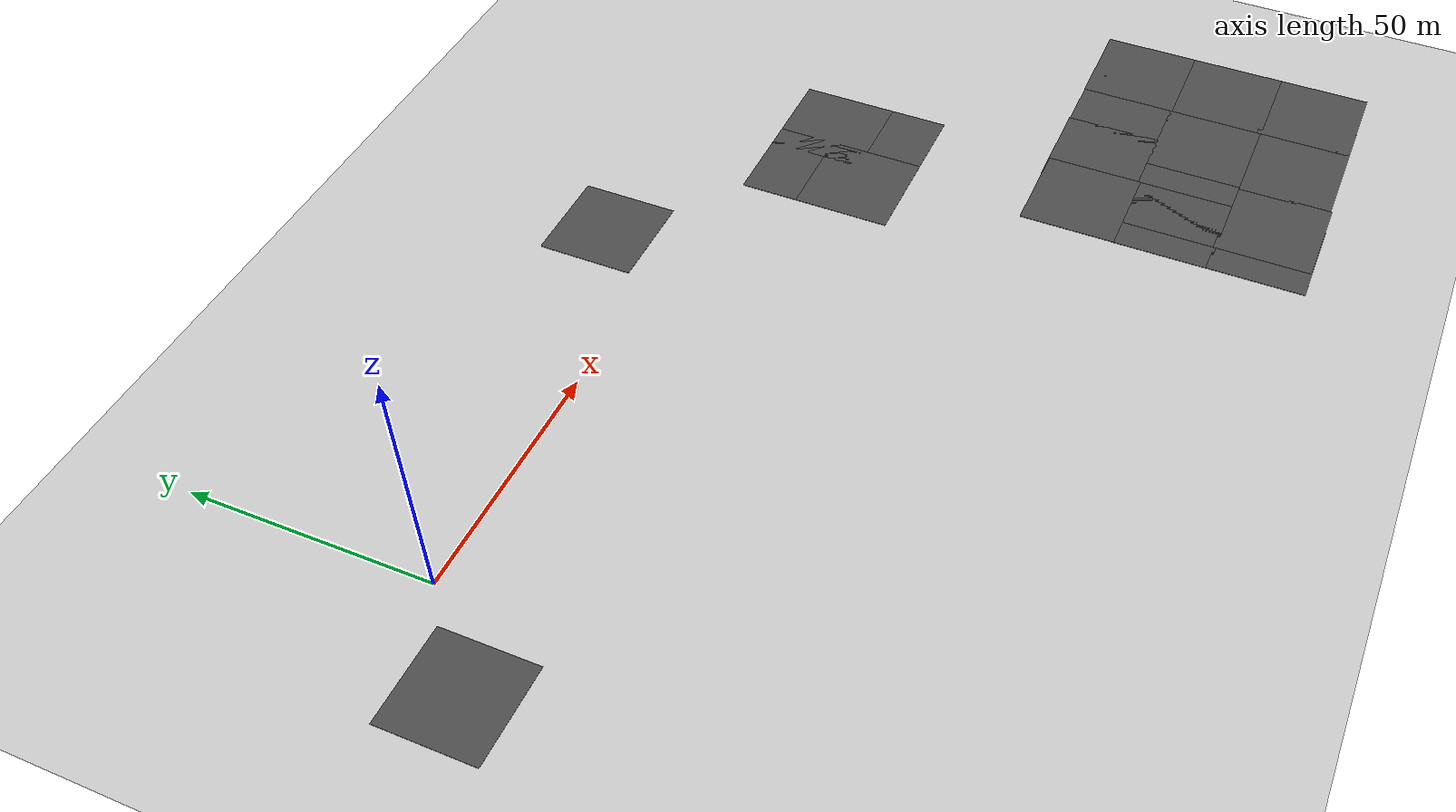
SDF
<sdf version="1.5">
 <world name="default">
  <model name="ground_plane">
   <static>1</static>
   <link name="link">
    <collision name="collision">
     <geometry><plane><normal>0 0 1</normal><size>100 100</size></plane></geometry>
     <surface><friction><ode><mu>100</mu><mu2>50</mu2></ode></friction></surface>
    </collision>
    <visual name="visual">
     <cast_shadows>0</cast_shadows>
     <geometry><plane><normal>0 0 1</normal><size>100 100</size></plane></geometry>
     <material>
      <script><uri>file://media/materials/scripts/gazebo.material</uri><name>Gazebo/Grey</name></script>
     </material>
    </visual>
   </link>
  </model>
  <model name="asphalt_plane">
   <static>1</static>
   <link name="link">
    <collision name="collision"><geometry><box><size>20 20 0.1</size></box></geometry></collision>
    <visual name="visual">
     <cast_shadows>0</cast_shadows>
     <geometry><box><size>20 20 0.1</size></box></geometry>
     <material>
      <script>
       <uri>model://asphalt_plane/materials/scripts</uri>
       <uri>model://asphalt_plane/materials/textures</uri>
       <name>vrc/asphalt</name>
      </script>
     </material>
    </visual>
   </link>
   <pose>-17 -15 0 0 -0 0</pose>
  </model>
  <model name="asphalt_plane_17">
   <static>1</static>
   <link name="link">
    <collision name="collision"><geometry><box><size>20 20 0.1</size></box></geometry></collision>
    <visual name="visual">
     <cast_shadows>0</cast_shadows>
     <geometry><box><size>20 20 0.1</size></box></geometry>
     <material>
      <script>
       <uri>model://asphalt_plane/materials/scripts</uri>
       <uri>model://asphalt_plane/materials/textures</uri>
       <name>vrc/asphalt</name>
      </script>
     </material>
    </visual>
   </link>
   <pose>89.8964 14.7962 0 0 -0 0</pose>
  </model>
  <model name="asphalt_plane_18">
   <static>1</static>
   <link name="link">
    <collision name="collision"><geometry><box><size>20 20 0.1</size></box></geometry></collision>
    <visual name="visual">
     <cast_shadows>0</cast_shadows>
     <geometry><box><size>20 20 0.1</size></box></geometry>
     <material>
      <script>
       <uri>model://asphalt_plane/materials/scripts</uri>
       <uri>model://asphalt_plane/materials/textures</uri>
       <name>vrc/asphalt</name>
      </script>
     </material>
    </visual>
   </link>
   <pose>168.57 -71.4489 0 0 -0 0</pose>
  </model>
  <model name="asphalt_plane_19">
   <static>1</static>
   <link name="link">
    <collision name="collision"><geometry><box><size>20 20 0.1</size></box></geometry></collision>
    <visual name="visual">
     <cast_shadows>0</cast_shadows>
     <geometry><box><size>20 20 0.1</size></box></geometry>
     <material>
      <script>
       <uri>model://asphalt_plane/materials/scripts</uri>
       <uri>model://asphalt_plane/materials/textures</uri>
       <name>vrc/asphalt</name>
      </script>
     </material>
    </visual>
   </link>
   <pose>182.164 -71.3523 0 0 -0 0</pose>
  </model>
  <model name="asphalt_plane_20">
   <static>1</static>
   <link name="link">
    <collision name="collision"><geometry><box><size>20 20 0.1</size></box></geometry></collision>
    <visual name="visual">
     <cast_shadows>0</cast_shadows>
     <geometry><box><size>20 20 0.1</size></box></geometry>
     <material>
      <script>
       <uri>model://asphalt_plane/materials/scripts</uri>
       <uri>model://asphalt_plane/materials/textures</uri>
       <name>vrc/asphalt</name>
      </script>
     </material>
    </visual>
   </link>
   <pose>182.134 -91.1486 0 0 -0 0</pose>
  </model>
  <model name="asphalt_plane_21">
   <static>1</static>
   <link name="link">
    <collision name="collision"><geometry><box><size>20 20 0.1</size></box></geometry></collision>
    <visual name="visual">
     <cast_shadows>0</cast_shadows>
     <geometry><box><size>20 20 0.1</size></box></geometry>
     <material>
      <script>
       <uri>model://asphalt_plane/materials/scripts</uri>
       <uri>model://asphalt_plane/materials/textures</uri>
       <name>vrc/asphalt</name>
      </script>
     </material>
    </visual>
   </link>
   <pose>182.142 -110.189 0 0 -0 0</pose>
  </model>
  <model name="asphalt_plane_22">
   <static>1</static>
   <link name="link">
    <collision name="collision"><geometry><box><size>20 20 0.1</size></box></geometry></collision>
    <visual name="visual">
     <cast_shadows>0</cast_shadows>
     <geometry><box><size>20 20 0.1</size></box></geometry>
     <material>
      <script>
       <uri>model://asphalt_plane/materials/scripts</uri>
       <uri>model://asphalt_plane/materials/textures</uri>
       <name>vrc/asphalt</name>
      </script>
     </material>
    </visual>
   </link>
   <pose>151.226 -71.3087 0 0 -0 0</pose>
  </model>
  <model name="asphalt_plane_23">
   <static>1</static>
   <link name="link">
    <collision name="collision"><geometry><box><size>20 20 0.1</size></box></geometry></collision>
    <visual name="visual">
     <cast_shadows>0</cast_shadows>
     <geometry><box><size>20 20 0.1</size></box></geometry>
     <material>
      <script>
       <uri>model://asphalt_plane/materials/scripts</uri>
       <uri>model://asphalt_plane/materials/textures</uri>
       <name>vrc/asphalt</name>
      </script>
     </material>
    </visual>
   </link>
   <pose>163 -91 0 0 -0 0</pose>
  </model>
  <model name="asphalt_plane_24">
   <static>1</static>
   <link name="link">
    <collision name="collision"><geometry><box><size>20 20 0.1</size></box></geometry></collision>
    <visual name="visual">
     <cast_shadows>0</cast_shadows>
     <geometry><box><size>20 20 0.1</size></box></geometry>
     <material>
      <script>
       <uri>model://asphalt_plane/materials/scripts</uri>
       <uri>model://asphalt_plane/materials/textures</uri>
       <name>vrc/asphalt</name>
      </script>
     </material>
    </visual>
   </link>
   <pose>162.538 -110.184 0 0 -0 0</pose>
  </model>
  <model name="asphalt_plane_25">
   <static>1</static>
   <link name="link">
    <collision name="collision"><geometry><box><size>20 20 0.1</size></box></geometry></collision>
    <visual name="visual">
     <cast_shadows>0</cast_shadows>
     <geometry><box><size>20 20 0.1</size></box></geometry>
     <material>
      <script>
       <uri>model://asphalt_plane/materials/scripts</uri>
       <uri>model://asphalt_plane/materials/textures</uri>
       <name>vrc/asphalt</name>
      </script>
     </material>
    </visual>
   </link>
   <pose>143 -110.419 0 0 -0 0</pose>
  </model>
  <model name="asphalt_plane_26">
   <static>1</static>
   <link name="link">
    <collision name="collision"><geometry><box><size>20 20 0.1</size></box></geometry></collision>
    <visual name="visual">
     <cast_shadows>0</cast_shadows>
     <geometry><box><size>20 20 0.1</size></box></geometry>
     <material>
      <script>
       <uri>model://asphalt_plane/materials/scripts</uri>
       <uri>model://asphalt_plane/materials/textures</uri>
       <name>vrc/asphalt</name>
      </script>
     </material>
    </visual>
   </link>
   <pose>143 -91 0 0 -0 0</pose>
  </model>
  <model name="asphalt_plane_27">
   <static>1</static>
   <link name="link">
    <collision name="collision"><geometry><box><size>20 20 0.1</size></box></geometry></collision>
    <visual name="visual">
     <cast_shadows>0</cast_shadows>
     <geometry><box><size>20 20 0.1</size></box></geometry>
     <material>
      <script>
       <uri>model://asphalt_plane/materials/scripts</uri>
       <uri>model://asphalt_plane/materials/textures</uri>
       <name>vrc/asphalt</name>
      </script>
     </material>
    </visual>
   </link>
   <pose>136.523 -110.521 0 0 -0 0</pose>
  </model>
  <model name="asphalt_plane_28">
   <static>1</static>
   <link name="link">
    <collision name="collision"><geometry><box><size>20 20 0.1</size></box></geometry></collision>
    <visual name="visual">
     <cast_shadows>0</cast_shadows>
     <geometry><box><size>20 20 0.1</size></box></geometry>
     <material>
      <script>
       <uri>model://asphalt_plane/materials/scripts</uri>
       <uri>model://asphalt_plane/materials/textures</uri>
       <name>vrc/asphalt</name>
      </script>
     </material>
    </visual>
   </link>
   <pose>136.484 -91 0 0 -0 0</pose>
  </model>
  <model name="asphalt_plane_29">
   <static>1</static>
   <link name="link">
    <collision name="collision"><geometry><box><size>20 20 0.1</size></box></geometry></collision>
    <visual name="visual">
     <cast_shadows>0</cast_shadows>
     <geometry><box><size>20 20 0.1</size></box></geometry>
     <material>
      <script>
       <uri>model://asphalt_plane/materials/scripts</uri>
       <uri>model://asphalt_plane/materials/textures</uri>
       <name>vrc/asphalt</name>
      </script>
     </material>
    </visual>
   </link>
   <pose>136.55 -71.4863 0 0 -0 0</pose>
  </model>
  <model name="asphalt_plane_30">
   <static>1</static>
   <link name="link">
    <collision name="collision"><geometry><box><size>20 20 0.1</size></box></geometry></collision>
    <visual name="visual">
     <cast_shadows>0</cast_shadows>
     <geometry><box><size>20 20 0.1</size></box></geometry>
     <material>
      <script>
       <uri>model://asphalt_plane/materials/scripts</uri>
       <uri>model://asphalt_plane/materials/textures</uri>
       <name>vrc/asphalt</name>
      </script>
     </material>
    </visual>
   </link>
   <pose>123 -15 0 0 -0 0</pose>
  </model>
  <model name="asphalt_plane_31">
   <static>1</static>
   <link name="link">
    <collision name="collision"><geometry><box><size>20 20 0.1</size></box></geometry></collision>
    <visual name="visual">
     <cast_shadows>0</cast_shadows>
     <geometry><box><size>20 20 0.1</size></box></geometry>
     <material>
      <script>
       <uri>model://asphalt_plane/materials/scripts</uri>
       <uri>model://asphalt_plane/materials/textures</uri>
       <name>vrc/asphalt</name>
      </script>
     </material>
    </visual>
   </link>
   <pose>138 -15 0 0 -0 0</pose>
  </model>
  <model name="asphalt_plane_32">
   <static>1</static>
   <link name="link">
    <collision name="collision"><geometry><box><size>20 20 0.1</size></box></geometry></collision>
    <visual name="visual">
     <cast_shadows>0</cast_shadows>
     <geometry><box><size>20 20 0.1</size></box></geometry>
     <material>
      <script>
       <uri>model://asphalt_plane/materials/scripts</uri>
       <uri>model://asphalt_plane/materials/textures</uri>
       <name>vrc/asphalt</name>
      </script>
     </material>
    </visual>
   </link>
   <pose>138 -27 0 0 -0 0</pose>
  </model>
  <model name="asphalt_plane_33">
   <static>1</static>
   <link name="link">
    <collision name="collision"><geometry><box><size>20 20 0.1</size></box></geometry></collision>
    <visual name="visual">
     <cast_shadows>0</cast_shadows>
     <geometry><box><size>20 20 0.1</size></box></geometry>
     <material>
      <script>
       <uri>model://asphalt_plane/materials/scripts</uri>
       <uri>model://asphalt_plane/materials/textures</uri>
       <name>vrc/asphalt</name>
      </script>
     </material>
    </visual>
   </link>
   <pose>123 -27 0 0 -0 0</pose>
  </model>
 </world>
</sdf>
